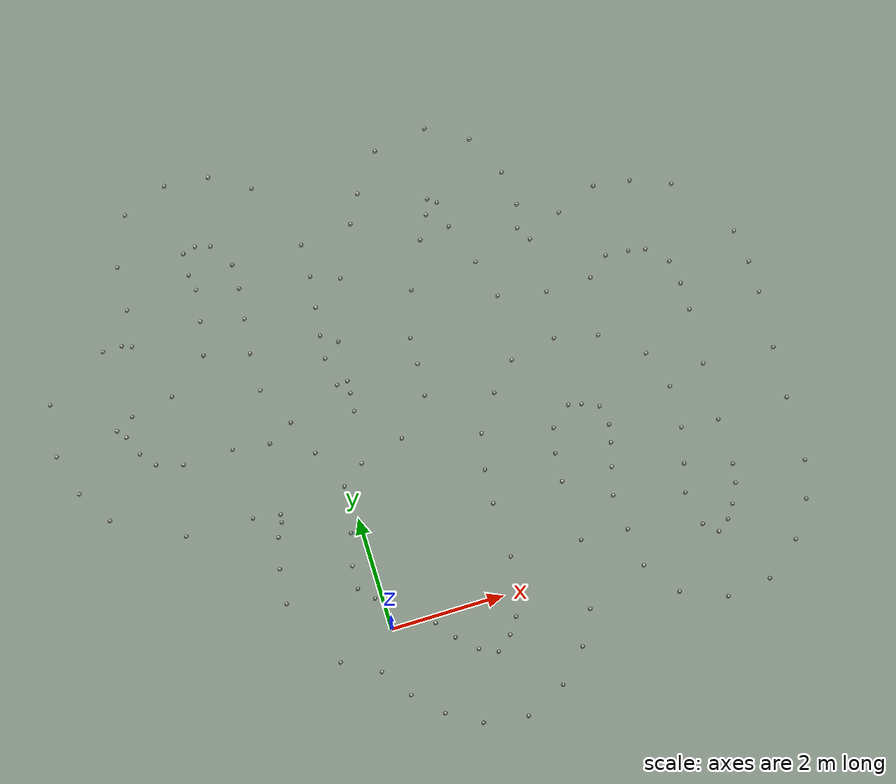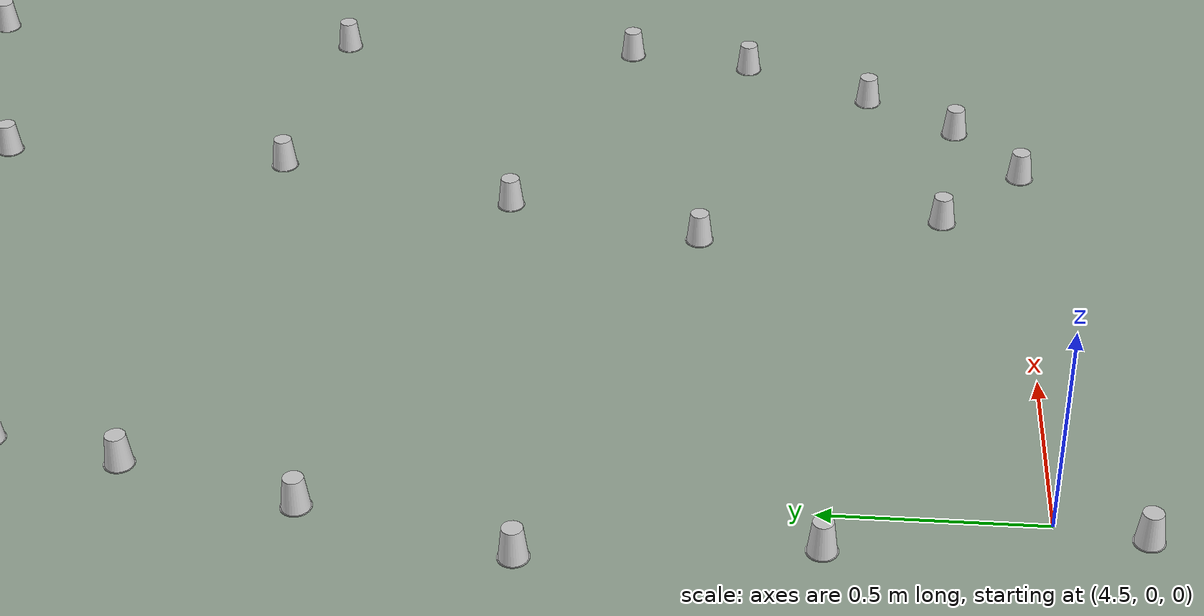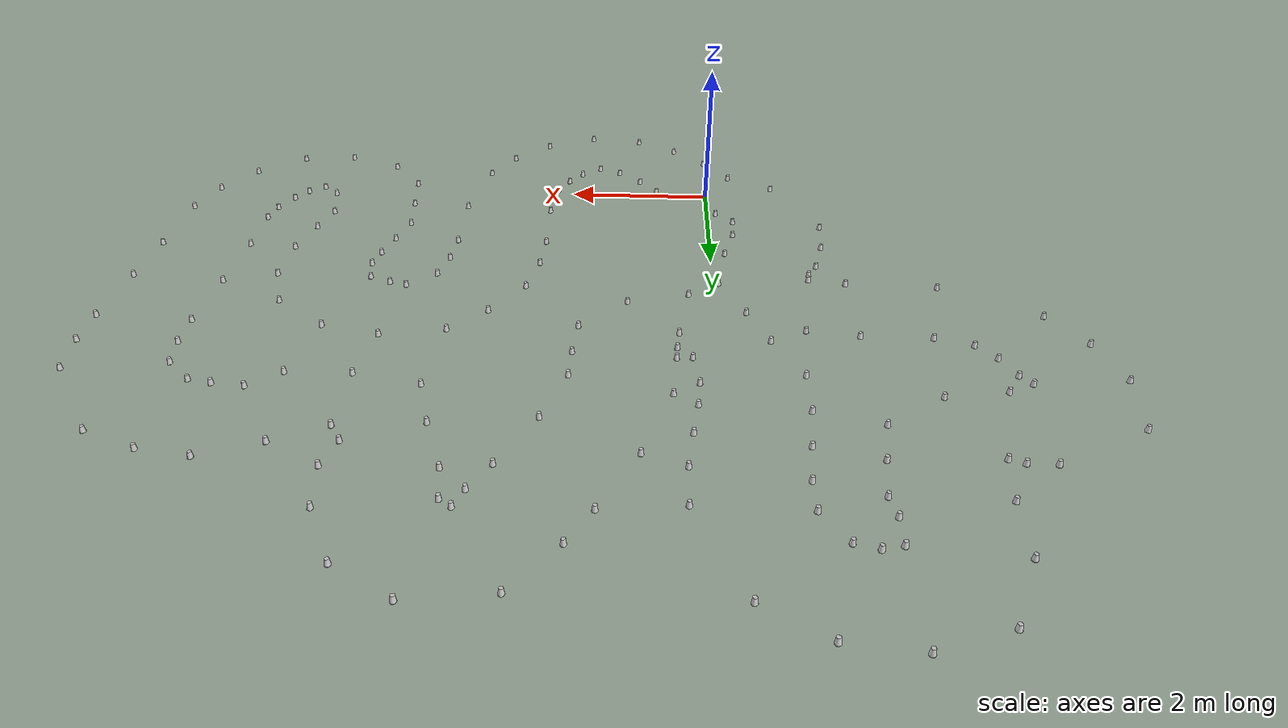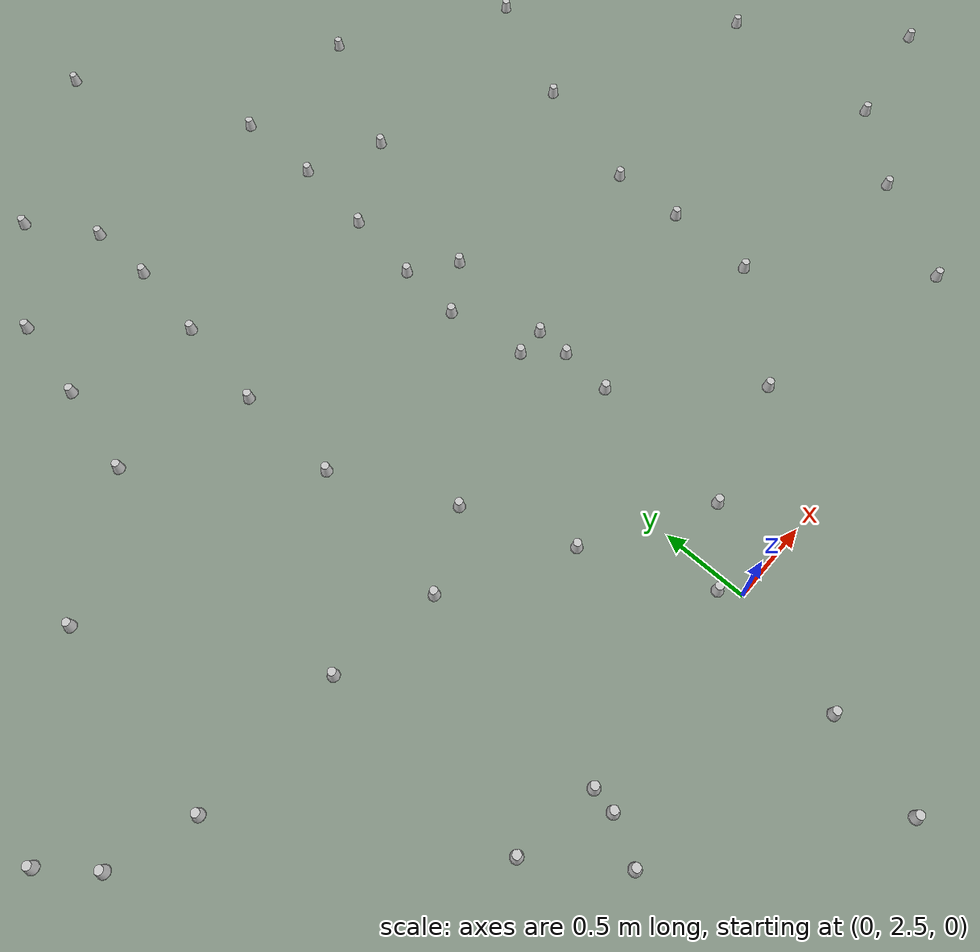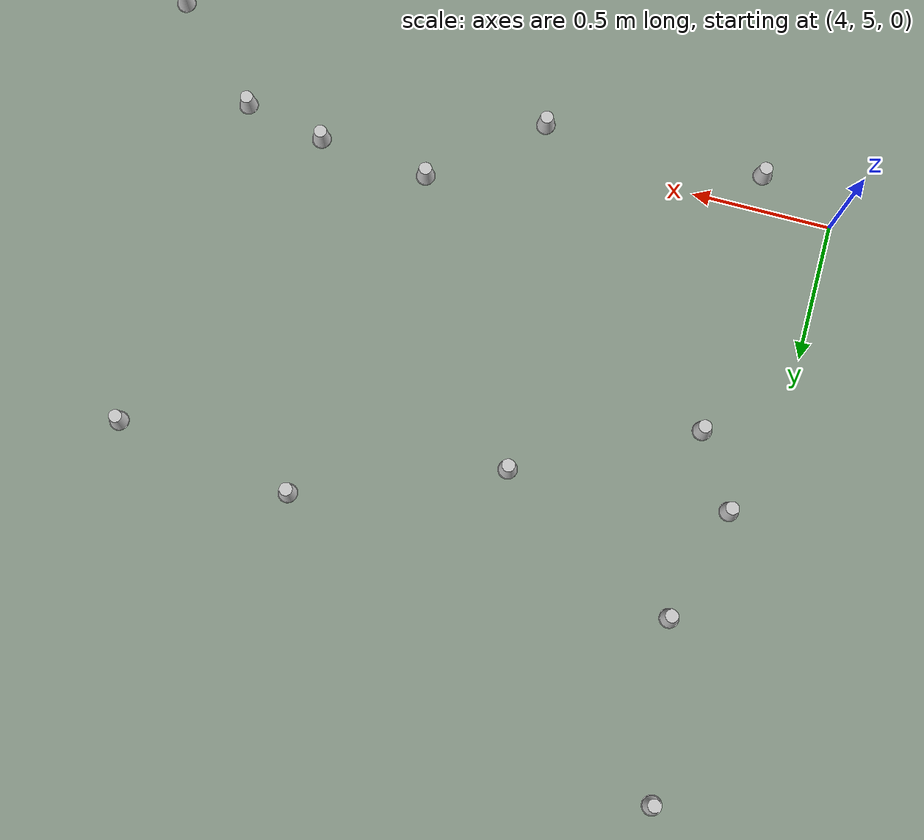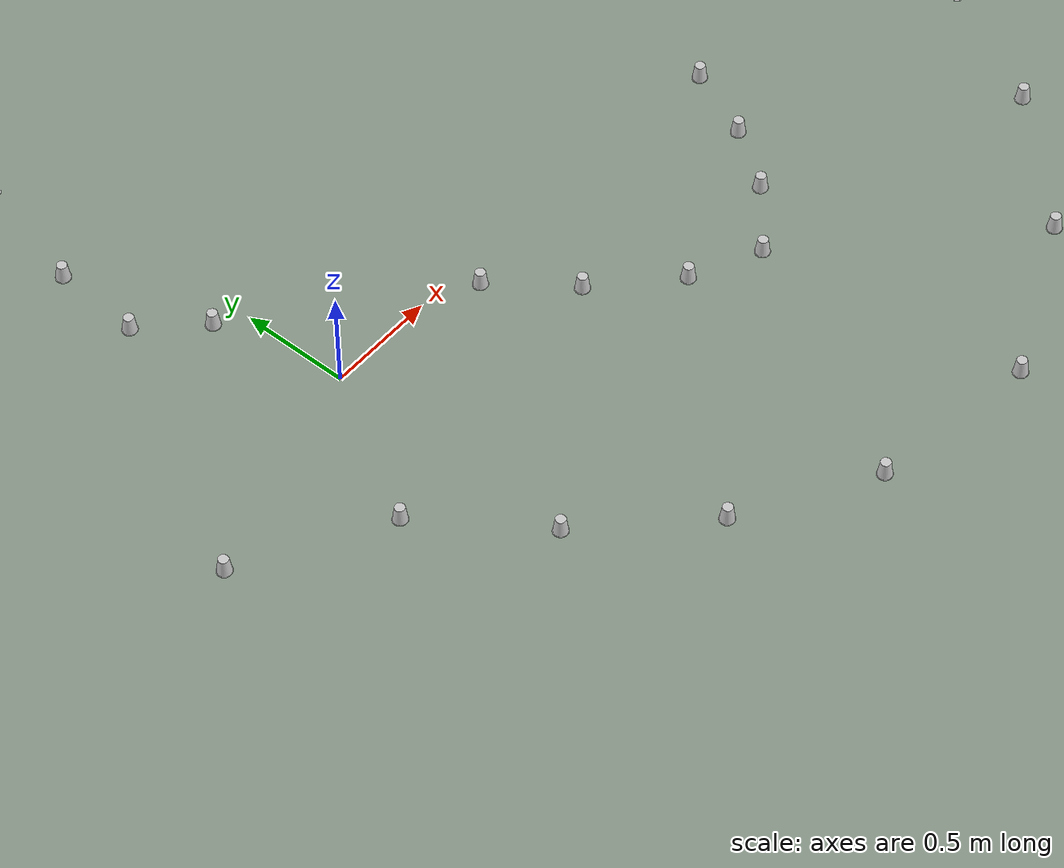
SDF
<?xml version='1.0' encoding='UTF-8'?>
<sdf version="1.4">
  <model name="some track">
    <include>
      <uri>model://cone_yellow</uri>
      <pose>-0.37777210807882244 -0.6548955257608206 0 0 0 0</pose>
      <name>cone_right_0</name>
    </include>
    <include>
      <uri>model://cone_yellow</uri>
      <pose>-0.013154712057799722 -1.179215314034966 0 0 0 0</pose>
      <name>cone_right_1</name>
    </include>
    <include>
      <uri>model://cone_yellow</uri>
      <pose>0.4551886600009215 -1.6491272656176257 0 0 0 0</pose>
      <name>cone_right_2</name>
    </include>
    <include>
      <uri>model://cone_yellow</uri>
      <pose>1.034315790908913 -1.9951064899751385 0 0 0 0</pose>
      <name>cone_right_3</name>
    </include>
    <include>
      <uri>model://cone_yellow</uri>
      <pose>2.528560065106534 -1.7651443627606116 0 0 0 0</pose>
      <name>cone_right_4</name>
    </include>
    <include>
      <uri>model://cone_yellow</uri>
      <pose>3.042003389721529 -1.233035221210566 0 0 0 0</pose>
      <name>cone_right_5</name>
    </include>
    <include>
      <uri>model://cone_yellow</uri>
      <pose>3.360063996379028 -0.6488242020410111 0 0 0 0</pose>
      <name>cone_right_6</name>
    </include>
    <include>
      <uri>model://cone_yellow</uri>
      <pose>3.5663564475547602 0.534569503556633 0 0 0 0</pose>
      <name>cone_right_7</name>
    </include>
    <include>
      <uri>model://cone_yellow</uri>
      <pose>3.5504466376734953 1.6052033103212509 0 0 0 0</pose>
      <name>cone_right_8</name>
    </include>
    <include>
      <uri>model://cone_yellow</uri>
      <pose>3.5842757483349805 2.10915507519608 0 0 0 0</pose>
      <name>cone_right_9</name>
    </include>
    <include>
      <uri>model://cone_yellow</uri>
      <pose>3.6865612070695173 2.5441178510632225 0 0 0 0</pose>
      <name>cone_right_10</name>
    </include>
    <include>
      <uri>model://cone_yellow</uri>
      <pose>4.046420235443002 2.8570561235243703 0 0 0 0</pose>
      <name>cone_right_11</name>
    </include>
    <include>
      <uri>model://cone_yellow</uri>
      <pose>4.273433907981891 2.800646367005867 0 0 0 0</pose>
      <name>cone_right_12</name>
    </include>
    <include>
      <uri>model://cone_yellow</uri>
      <pose>4.55913859925805 2.6730985004764096 0 0 0 0</pose>
      <name>cone_right_13</name>
    </include>
    <include>
      <uri>model://cone_yellow</uri>
      <pose>4.622357330063222 2.3193173563777885 0 0 0 0</pose>
      <name>cone_right_14</name>
    </include>
    <include>
      <uri>model://cone_yellow</uri>
      <pose>4.5587575006414625 2.0118566203590773 0 0 0 0</pose>
      <name>cone_right_15</name>
    </include>
    <include>
      <uri>model://cone_yellow</uri>
      <pose>4.445691730377478 1.599125003715781 0 0 0 0</pose>
      <name>cone_right_16</name>
    </include>
    <include>
      <uri>model://cone_yellow</uri>
      <pose>4.320395110240769 1.1185110340945388 0 0 0 0</pose>
      <name>cone_right_17</name>
    </include>
    <include>
      <uri>model://cone_yellow</uri>
      <pose>4.465287493088678 -0.19683824182256612 0 0 0 0</pose>
      <name>cone_right_18</name>
    </include>
    <include>
      <uri>model://cone_yellow</uri>
      <pose>4.91835410092163 -0.8092307888544925 0 0 0 0</pose>
      <name>cone_right_19</name>
    </include>
    <include>
      <uri>model://cone_yellow</uri>
      <pose>6.473936765698973 -1.0397826670927632 0 0 0 0</pose>
      <name>cone_right_20</name>
    </include>
    <include>
      <uri>model://cone_yellow</uri>
      <pose>7.1063572508311195 -0.5254769375045716 0 0 0 0</pose>
      <name>cone_right_21</name>
    </include>
    <include>
      <uri>model://cone_yellow</uri>
      <pose>7.491610925290502 0.09633781105670941 0 0 0 0</pose>
      <name>cone_right_22</name>
    </include>
    <include>
      <uri>model://cone_yellow</uri>
      <pose>7.675957586626182 0.7476237482105776 0 0 0 0</pose>
      <name>cone_right_23</name>
    </include>
    <include>
      <uri>model://cone_yellow</uri>
      <pose>7.705288386574571 1.8848467006992577 0 0 0 0</pose>
      <name>cone_right_24</name>
    </include>
    <include>
      <uri>model://cone_yellow</uri>
      <pose>7.746538734064556 2.789946195727803 0 0 0 0</pose>
      <name>cone_right_25</name>
    </include>
    <include>
      <uri>model://cone_yellow</uri>
      <pose>7.804288750044609 3.7933508404466334 0 0 0 0</pose>
      <name>cone_right_26</name>
    </include>
    <include>
      <uri>model://cone_yellow</uri>
      <pose>7.795698660942687 4.354665271699741 0 0 0 0</pose>
      <name>cone_right_27</name>
    </include>
    <include>
      <uri>model://cone_yellow</uri>
      <pose>7.7119090093155584 4.948400342280009 0 0 0 0</pose>
      <name>cone_right_28</name>
    </include>
    <include>
      <uri>model://cone_yellow</uri>
      <pose>6.9172789735549145 6.066085498127048 0 0 0 0</pose>
      <name>cone_right_29</name>
    </include>
    <include>
      <uri>model://cone_yellow</uri>
      <pose>6.241953386366313 6.330984480103302 0 0 0 0</pose>
      <name>cone_right_30</name>
    </include>
    <include>
      <uri>model://cone_yellow</uri>
      <pose>5.60335827468168 6.423768827643583 0 0 0 0</pose>
      <name>cone_right_31</name>
    </include>
    <include>
      <uri>model://cone_yellow</uri>
      <pose>4.272077792456996 5.8395061163997255 0 0 0 0</pose>
      <name>cone_right_32</name>
    </include>
    <include>
      <uri>model://cone_yellow</uri>
      <pose>4.118492848291394 6.092580817093426 0 0 0 0</pose>
      <name>cone_right_33</name>
    </include>
    <include>
      <uri>model://cone_yellow</uri>
      <pose>4.233049427803561 6.501416352410999 0 0 0 0</pose>
      <name>cone_right_34</name>
    </include>
    <include>
      <uri>model://cone_yellow</uri>
      <pose>4.146166052155068 7.117580144367297 0 0 0 0</pose>
      <name>cone_right_35</name>
    </include>
    <include>
      <uri>model://cone_yellow</uri>
      <pose>3.7786950995145476 7.849479035286958 0 0 0 0</pose>
      <name>cone_right_36</name>
    </include>
    <include>
      <uri>model://cone_yellow</uri>
      <pose>2.139717339171027 8.119907732526233 0 0 0 0</pose>
      <name>cone_right_37</name>
    </include>
    <include>
      <uri>model://cone_yellow</uri>
      <pose>1.6313363681609365 7.4795957773882575 0 0 0 0</pose>
      <name>cone_right_38</name>
    </include>
    <include>
      <uri>model://cone_yellow</uri>
      <pose>1.356567315671915 7.002782071447961 0 0 0 0</pose>
      <name>cone_right_39</name>
    </include>
    <include>
      <uri>model://cone_yellow</uri>
      <pose>0.9161371326485857 6.132605665931101 0 0 0 0</pose>
      <name>cone_right_40</name>
    </include>
    <include>
      <uri>model://cone_yellow</uri>
      <pose>0.5591195688352667 5.073349707049411 0 0 0 0</pose>
      <name>cone_right_41</name>
    </include>
    <include>
      <uri>model://cone_yellow</uri>
      <pose>0.511044670682634 4.3640830652333555 0 0 0 0</pose>
      <name>cone_right_42</name>
    </include>
    <include>
      <uri>model://cone_yellow</uri>
      <pose>0.47112009138794875 3.824909210492397 0 0 0 0</pose>
      <name>cone_right_43</name>
    </include>
    <include>
      <uri>model://cone_yellow</uri>
      <pose>0.49945891389969815 4.148579682461782 0 0 0 0</pose>
      <name>cone_right_44</name>
    </include>
    <include>
      <uri>model://cone_yellow</uri>
      <pose>0.3210114639573264 4.350624054249788 0 0 0 0</pose>
      <name>cone_right_45</name>
    </include>
    <include>
      <uri>model://cone_yellow</uri>
      <pose>0.2548438929465101 4.8530408734549795 0 0 0 0</pose>
      <name>cone_right_46</name>
    </include>
    <include>
      <uri>model://cone_yellow</uri>
      <pose>0.28567875649095203 5.2636023332259505 0 0 0 0</pose>
      <name>cone_right_47</name>
    </include>
    <include>
      <uri>model://cone_yellow</uri>
      <pose>0.3543580200649864 5.764586005843506 0 0 0 0</pose>
      <name>cone_right_48</name>
    </include>
    <include>
      <uri>model://cone_yellow</uri>
      <pose>0.42284300110867845 6.315191934024747 0 0 0 0</pose>
      <name>cone_right_49</name>
    </include>
    <include>
      <uri>model://cone_yellow</uri>
      <pose>0.4327627158453544 6.896710746561867 0 0 0 0</pose>
      <name>cone_right_50</name>
    </include>
    <include>
      <uri>model://cone_yellow</uri>
      <pose>-0.10827787909223474 8.109823409608346 0 0 0 0</pose>
      <name>cone_right_51</name>
    </include>
    <include>
      <uri>model://cone_yellow</uri>
      <pose>-0.7792290394617436 8.514842589611577 0 0 0 0</pose>
      <name>cone_right_52</name>
    </include>
    <include>
      <uri>model://cone_yellow</uri>
      <pose>-1.5543841864121088 8.59070640567541 0 0 0 0</pose>
      <name>cone_right_53</name>
    </include>
    <include>
      <uri>model://cone_yellow</uri>
      <pose>-2.7413825286115774 7.443517213164441 0 0 0 0</pose>
      <name>cone_right_54</name>
    </include>
    <include>
      <uri>model://cone_yellow</uri>
      <pose>-2.791375013028915 6.66592621847686 0 0 0 0</pose>
      <name>cone_right_55</name>
    </include>
    <include>
      <uri>model://cone_yellow</uri>
      <pose>-2.8896399164257867 6.026027534379577 0 0 0 0</pose>
      <name>cone_right_56</name>
    </include>
    <include>
      <uri>model://cone_yellow</uri>
      <pose>-3.058632772721926 6.088014948889986 0 0 0 0</pose>
      <name>cone_right_57</name>
    </include>
    <include>
      <uri>model://cone_yellow</uri>
      <pose>-3.3945130247851316 6.083977498137379 0 0 0 0</pose>
      <name>cone_right_58</name>
    </include>
    <include>
      <uri>model://cone_yellow</uri>
      <pose>-4.531349088631927 5.453557162140508 0 0 0 0</pose>
      <name>cone_right_59</name>
    </include>
    <include>
      <uri>model://cone_yellow</uri>
      <pose>-4.677697053286975 4.54954025584382 0 0 0 0</pose>
      <name>cone_right_60</name>
    </include>
    <include>
      <uri>model://cone_yellow</uri>
      <pose>-4.482625902630827 3.8096623018657114 0 0 0 0</pose>
      <name>cone_right_61</name>
    </include>
    <include>
      <uri>model://cone_yellow</uri>
      <pose>-4.108457383118208 3.212509700646414 0 0 0 0</pose>
      <name>cone_right_62</name>
    </include>
    <include>
      <uri>model://cone_yellow</uri>
      <pose>-2.9276299646802717 2.5701191329438187 0 0 0 0</pose>
      <name>cone_right_63</name>
    </include>
    <include>
      <uri>model://cone_yellow</uri>
      <pose>-1.7392092464549291 2.538483871888455 0 0 0 0</pose>
      <name>cone_right_64</name>
    </include>
    <include>
      <uri>model://cone_yellow</uri>
      <pose>-1.2632704059579518 2.4650986896460236 0 0 0 0</pose>
      <name>cone_right_65</name>
    </include>
    <include>
      <uri>model://cone_yellow</uri>
      <pose>-1.2858871307150466 2.3276578067123217 0 0 0 0</pose>
      <name>cone_right_66</name>
    </include>
    <include>
      <uri>model://cone_yellow</uri>
      <pose>-1.4097838218765237 2.094363922167608 0 0 0 0</pose>
      <name>cone_right_67</name>
    </include>
    <include>
      <uri>model://cone_yellow</uri>
      <pose>-1.5474423864032718 1.5571547398920957 0 0 0 0</pose>
      <name>cone_right_68</name>
    </include>
    <include>
      <uri>model://cone_yellow</uri>
      <pose>-1.607798592058884 0.9455886102286002 0 0 0 0</pose>
      <name>cone_right_69</name>
    </include>
    <include>
      <uri>model://cone_yellow</uri>
      <pose>-1.0087087867180187 -0.29024471068266156 0 0 0 0</pose>
      <name>cone_right_70</name>
    </include>
    <include>
      <uri>model://cone_yellow</uri>
      <pose>3.085303695150884 8.255344449744726 0 0 0 0</pose>
      <name>cone_right_71</name>
    </include>
    <include>
      <uri>model://cone_yellow</uri>
      <pose>1.8067178306062672 -2.1079304523537132 0 0 0 0</pose>
      <name>cone_right_72</name>
    </include>
    <include>
      <uri>model://cone_yellow</uri>
      <pose>-2.354294061902955 8.288991446180106 0 0 0 0</pose>
      <name>cone_right_73</name>
    </include>
    <include>
      <uri>model://cone_yellow</uri>
      <pose>4.891025837183186 6.146799339793958 0 0 0 0</pose>
      <name>cone_right_74</name>
    </include>
    <include>
      <uri>model://cone_yellow</uri>
      <pose>5.698553751632417 -1.1321675557275555 0 0 0 0</pose>
      <name>cone_right_75</name>
    </include>
    <include>
      <uri>model://cone_yellow</uri>
      <pose>4.386320890652421 0.482888273170893 0 0 0 0</pose>
      <name>cone_right_76</name>
    </include>
    <include>
      <uri>model://cone_blue</uri>
      <pose>0.7478133306653215 -0.11124359659368055 0 0 0 0</pose>
      <name>cone_left_0</name>
    </include>
    <include>
      <uri>model://cone_blue</uri>
      <pose>1.0026615756183181 -0.4507805059073542 0 0 0 0</pose>
      <name>cone_left_1</name>
    </include>
    <include>
      <uri>model://cone_blue</uri>
      <pose>1.3275825888778598 -0.7539016890958982 0 0 0 0</pose>
      <name>cone_left_2</name>
    </include>
    <include>
      <uri>model://cone_blue</uri>
      <pose>1.6398929135890992 -0.9015908986430411 0 0 0 0</pose>
      <name>cone_left_3</name>
    </include>
    <include>
      <uri>model://cone_blue</uri>
      <pose>1.9138201371692423 -0.6767534306963773 0 0 0 0</pose>
      <name>cone_left_4</name>
    </include>
    <include>
      <uri>model://cone_blue</uri>
      <pose>2.1023417477779436 -0.4086954862348192 0 0 0 0</pose>
      <name>cone_left_5</name>
    </include>
    <include>
      <uri>model://cone_blue</uri>
      <pose>2.2450977736545847 -0.08371330833643231 0 0 0 0</pose>
      <name>cone_left_6</name>
    </include>
    <include>
      <uri>model://cone_blue</uri>
      <pose>2.3187897467594487 0.6125267166077856 0 0 0 0</pose>
      <name>cone_left_7</name>
    </include>
    <include>
      <uri>model://cone_blue</uri>
      <pose>2.300577146392003 1.587140786584401 0 0 0 0</pose>
      <name>cone_left_8</name>
    </include>
    <include>
      <uri>model://cone_blue</uri>
      <pose>2.3367784123019906 2.1882145249196494 0 0 0 0</pose>
      <name>cone_left_9</name>
    </include>
    <include>
      <uri>model://cone_blue</uri>
      <pose>2.4653178440137813 2.810697385522107 0 0 0 0</pose>
      <name>cone_left_10</name>
    </include>
    <include>
      <uri>model://cone_blue</uri>
      <pose>3.3413129479254335 3.8892013231400133 0 0 0 0</pose>
      <name>cone_left_11</name>
    </include>
    <include>
      <uri>model://cone_blue</uri>
      <pose>4.154569768102872 4.044982059755545 0 0 0 0</pose>
      <name>cone_left_12</name>
    </include>
    <include>
      <uri>model://cone_blue</uri>
      <pose>4.904890452094628 3.874329392628319 0 0 0 0</pose>
      <name>cone_left_13</name>
    </include>
    <include>
      <uri>model://cone_blue</uri>
      <pose>5.826804274279448 2.6536937290003078 0 0 0 0</pose>
      <name>cone_left_14</name>
    </include>
    <include>
      <uri>model://cone_blue</uri>
      <pose>5.804613762016938 1.9101601307858285 0 0 0 0</pose>
      <name>cone_left_15</name>
    </include>
    <include>
      <uri>model://cone_blue</uri>
      <pose>5.657652270149441 1.2930994328305165 0 0 0 0</pose>
      <name>cone_left_16</name>
    </include>
    <include>
      <uri>model://cone_blue</uri>
      <pose>5.529978058420054 0.8032189608134164 0 0 0 0</pose>
      <name>cone_left_17</name>
    </include>
    <include>
      <uri>model://cone_blue</uri>
      <pose>5.65157200998036 0.1971529319149519 0 0 0 0</pose>
      <name>cone_left_18</name>
    </include>
    <include>
      <uri>model://cone_blue</uri>
      <pose>5.879781823662468 -0.01038366083476644 0 0 0 0</pose>
      <name>cone_left_19</name>
    </include>
    <include>
      <uri>model://cone_blue</uri>
      <pose>6.092344915925937 0.15054823655831484 0 0 0 0</pose>
      <name>cone_left_20</name>
    </include>
    <include>
      <uri>model://cone_blue</uri>
      <pose>6.246447086483868 0.38174657919475 0 0 0 0</pose>
      <name>cone_left_21</name>
    </include>
    <include>
      <uri>model://cone_blue</uri>
      <pose>6.405572021916528 0.7152235035381718 0 0 0 0</pose>
      <name>cone_left_22</name>
    </include>
    <include>
      <uri>model://cone_blue</uri>
      <pose>6.4619390064882944 1.0453801706098094 0 0 0 0</pose>
      <name>cone_left_23</name>
    </include>
    <include>
      <uri>model://cone_blue</uri>
      <pose>6.455581229747372 1.8577907923818988 0 0 0 0</pose>
      <name>cone_left_24</name>
    </include>
    <include>
      <uri>model://cone_blue</uri>
      <pose>6.49921965591124 2.871769892019041 0 0 0 0</pose>
      <name>cone_left_25</name>
    </include>
    <include>
      <uri>model://cone_blue</uri>
      <pose>6.5554735835836695 3.847762971604473 0 0 0 0</pose>
      <name>cone_left_26</name>
    </include>
    <include>
      <uri>model://cone_blue</uri>
      <pose>6.545887163264876 4.332957663071728 0 0 0 0</pose>
      <name>cone_left_27</name>
    </include>
    <include>
      <uri>model://cone_blue</uri>
      <pose>6.475805159525921 4.762531376244156 0 0 0 0</pose>
      <name>cone_left_28</name>
    </include>
    <include>
      <uri>model://cone_blue</uri>
      <pose>6.139596534779322 5.0874588970068615 0 0 0 0</pose>
      <name>cone_left_29</name>
    </include>
    <include>
      <uri>model://cone_blue</uri>
      <pose>5.846867900491586 5.145063968917526 0 0 0 0</pose>
      <name>cone_left_30</name>
    </include>
    <include>
      <uri>model://cone_blue</uri>
      <pose>5.446552495917558 5.183643048641237 0 0 0 0</pose>
      <name>cone_left_31</name>
    </include>
    <include>
      <uri>model://cone_blue</uri>
      <pose>5.076343104880729 4.88260627460229 0 0 0 0</pose>
      <name>cone_left_32</name>
    </include>
    <include>
      <uri>model://cone_blue</uri>
      <pose>3.439728267764037 5.0429243760511575 0 0 0 0</pose>
      <name>cone_left_33</name>
    </include>
    <include>
      <uri>model://cone_blue</uri>
      <pose>2.983543676088108 6.466268430281762 0 0 0 0</pose>
      <name>cone_left_34</name>
    </include>
    <include>
      <uri>model://cone_blue</uri>
      <pose>2.90968319513218 6.934249447841822 0 0 0 0</pose>
      <name>cone_left_35</name>
    </include>
    <include>
      <uri>model://cone_blue</uri>
      <pose>2.766674965734073 7.038508576573894 0 0 0 0</pose>
      <name>cone_left_36</name>
    </include>
    <include>
      <uri>model://cone_blue</uri>
      <pose>2.6667950068865007 6.779363382044681 0 0 0 0</pose>
      <name>cone_left_37</name>
    </include>
    <include>
      <uri>model://cone_blue</uri>
      <pose>2.4415979615809236 6.382130399865358 0 0 0 0</pose>
      <name>cone_left_38</name>
    </include>
    <include>
      <uri>model://cone_blue</uri>
      <pose>2.0364571285901336 5.578184249774103 0 0 0 0</pose>
      <name>cone_left_39</name>
    </include>
    <include>
      <uri>model://cone_blue</uri>
      <pose>1.7724140648584936 4.772656398311517 0 0 0 0</pose>
      <name>cone_left_40</name>
    </include>
    <include>
      <uri>model://cone_blue</uri>
      <pose>1.759378407127358 4.299562661840669 0 0 0 0</pose>
      <name>cone_left_41</name>
    </include>
    <include>
      <uri>model://cone_blue</uri>
      <pose>1.7177329662945757 3.7329508497140824 0 0 0 0</pose>
      <name>cone_left_42</name>
    </include>
    <include>
      <uri>model://cone_blue</uri>
      <pose>0.3330108709575122 2.9097112273783874 0 0 0 0</pose>
      <name>cone_left_43</name>
    </include>
    <include>
      <uri>model://cone_blue</uri>
      <pose>-0.3833220901870611 3.317950705844623 0 0 0 0</pose>
      <name>cone_left_44</name>
    </include>
    <include>
      <uri>model://cone_blue</uri>
      <pose>-0.9775516919711634 4.643992739582837 0 0 0 0</pose>
      <name>cone_left_45</name>
    </include>
    <include>
      <uri>model://cone_blue</uri>
      <pose>-0.9632348510171764 5.315706085308049 0 0 0 0</pose>
      <name>cone_left_46</name>
    </include>
    <include>
      <uri>model://cone_blue</uri>
      <pose>-0.8848854432069949 5.928218639317595 0 0 0 0</pose>
      <name>cone_left_47</name>
    </include>
    <include>
      <uri>model://cone_blue</uri>
      <pose>-0.8176035774017966 6.469439416537935 0 0 0 0</pose>
      <name>cone_left_48</name>
    </include>
    <include>
      <uri>model://cone_blue</uri>
      <pose>-0.8171731184471029 6.909376059492006 0 0 0 0</pose>
      <name>cone_left_49</name>
    </include>
    <include>
      <uri>model://cone_blue</uri>
      <pose>-1.0877546374866514 7.333212001138726 0 0 0 0</pose>
      <name>cone_left_50</name>
    </include>
    <include>
      <uri>model://cone_blue</uri>
      <pose>-1.34583851729046 7.400637177833897 0 0 0 0</pose>
      <name>cone_left_51</name>
    </include>
    <include>
      <uri>model://cone_blue</uri>
      <pose>-1.574423755300353 7.340867049726506 0 0 0 0</pose>
      <name>cone_left_52</name>
    </include>
    <include>
      <uri>model://cone_blue</uri>
      <pose>-1.5921992121287232 6.951706573672503 0 0 0 0</pose>
      <name>cone_left_53</name>
    </include>
    <include>
      <uri>model://cone_blue</uri>
      <pose>-1.541375395728701 6.666904354110887 0 0 0 0</pose>
      <name>cone_left_54</name>
    </include>
    <include>
      <uri>model://cone_blue</uri>
      <pose>-1.747700674755554 5.517623395594678 0 0 0 0</pose>
      <name>cone_left_55</name>
    </include>
    <include>
      <uri>model://cone_blue</uri>
      <pose>-2.4752216278716954 4.98251441245206 0 0 0 0</pose>
      <name>cone_left_56</name>
    </include>
    <include>
      <uri>model://cone_blue</uri>
      <pose>-3.2334577896026313 4.844396435350314 0 0 0 0</pose>
      <name>cone_left_57</name>
    </include>
    <include>
      <uri>model://cone_blue</uri>
      <pose>-3.5521831695038713 4.67655387848071 0 0 0 0</pose>
      <name>cone_left_58</name>
    </include>
    <include>
      <uri>model://cone_blue</uri>
      <pose>-3.427970967122956 4.52337330032423 0 0 0 0</pose>
      <name>cone_left_59</name>
    </include>
    <include>
      <uri>model://cone_blue</uri>
      <pose>-3.288209303818167 4.178266409928546 0 0 0 0</pose>
      <name>cone_left_60</name>
    </include>
    <include>
      <uri>model://cone_blue</uri>
      <pose>-3.0763460555901756 3.917666568008792 0 0 0 0</pose>
      <name>cone_left_61</name>
    </include>
    <include>
      <uri>model://cone_blue</uri>
      <pose>-2.6200981012725264 3.7816983309284 0 0 0 0</pose>
      <name>cone_left_62</name>
    </include>
    <include>
      <uri>model://cone_blue</uri>
      <pose>-1.7333030214712877 3.788469918413152 0 0 0 0</pose>
      <name>cone_left_63</name>
    </include>
    <include>
      <uri>model://cone_blue</uri>
      <pose>-1.0876535498179576 3.7027006934580347 0 0 0 0</pose>
      <name>cone_left_64</name>
    </include>
    <include>
      <uri>model://cone_blue</uri>
      <pose>-0.06900694186188017 2.6134944838142666 0 0 0 0</pose>
      <name>cone_left_65</name>
    </include>
    <include>
      <uri>model://cone_blue</uri>
      <pose>-0.19392931765934718 1.8041953081260413 0 0 0 0</pose>
      <name>cone_left_66</name>
    </include>
    <include>
      <uri>model://cone_blue</uri>
      <pose>-0.33651802089383465 1.2470544641496075 0 0 0 0</pose>
      <name>cone_left_67</name>
    </include>
    <include>
      <uri>model://cone_blue</uri>
      <pose>-0.3622406584129054 0.8403012228948823 0 0 0 0</pose>
      <name>cone_left_68</name>
    </include>
    <include>
      <uri>model://cone_blue</uri>
      <pose>-0.12441871489423495 0.5932319833358548 0 0 0 0</pose>
      <name>cone_left_69</name>
    </include>
    <include>
      <uri>model://cone_blue</uri>
      <pose>4.274164235867801 4.868213475249348 0 0 0 0</pose>
      <name>cone_left_70</name>
    </include>
    <include>
      <uri>model://cone_blue</uri>
      <pose>1.1225622364201158 3.12978532608782 0 0 0 0</pose>
      <name>cone_left_71</name>
    </include>
    <include>
      <uri>model://cone_blue</uri>
      <pose>3.2479308445885735 5.729015800721271 0 0 0 0</pose>
      <name>cone_left_72</name>
    </include>
    <include>
      <uri>model://cone_blue</uri>
      <pose>5.603220595065494 3.331667304700119 0 0 0 0</pose>
      <name>cone_left_73</name>
    </include>
    <include>
      <uri>model://cone_blue</uri>
      <pose>2.883421716538571 3.429804377636657 0 0 0 0</pose>
      <name>cone_left_74</name>
    </include>
    <include>
      <uri>model://cone_blue</uri>
      <pose>-0.6354933273287244 3.948528906015504 0 0 0 0</pose>
      <name>cone_left_75</name>
    </include>
    <include>
      <uri>model://cone_blue</uri>
      <pose>-1.6308836385421799 6.107544510619348 0 0 0 0</pose>
      <name>cone_left_76</name>
    </include>
  </model>
</sdf>

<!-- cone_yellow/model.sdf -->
<sdf version='1.4'>
  <model name="cone_yellow">
    <link name="link">
    <collision name="collision"><geometry><box><size> 0.05 0.05 0.01</size>
             </box></geometry></collision>
      <visual name="visual">
        <geometry>
          <mesh>
            <uri>model://cup.dae</uri>
            <scale>1 1 1</scale>
          </mesh>
        </geometry>
        <material>
            <script>
              <uri>model://cone_yellow/materials/scripts</uri>
              <uri>model://cone_yellow/materials/textures</uri>
              <name>cone_yellow/Image</name>
            </script>
        </material>
      </visual>
    </link>
  </model>
</sdf>

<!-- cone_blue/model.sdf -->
<sdf version='1.4'>
  <model name="cone_blue">
    <link name="link">
    <collision name="collision"><geometry><box><size> 0.05 0.05 0.01</size>
             </box></geometry></collision>
      <visual name="visual">
        <geometry>
          <mesh>
            <uri>model://cup.dae</uri>
            <scale>1 1 1</scale>
          </mesh>
        </geometry>
        <material>
            <script>
              <uri>model://cone_blue/materials/scripts</uri>
              <uri>model://cone_blue/materials/textures</uri>
              <name>cone_blue/Image</name>
            </script>
        </material>
      </visual>
    </link>
  </model>
</sdf>
